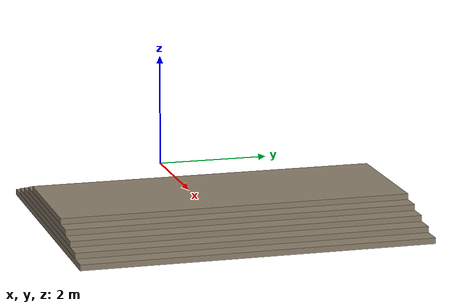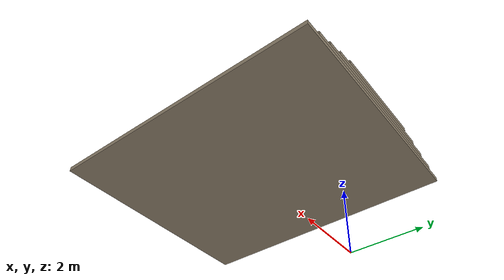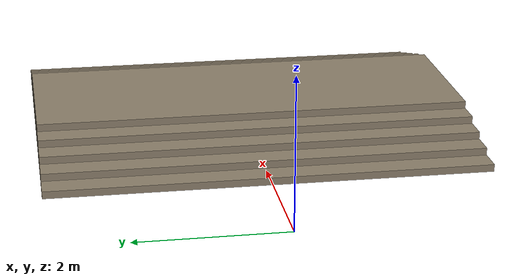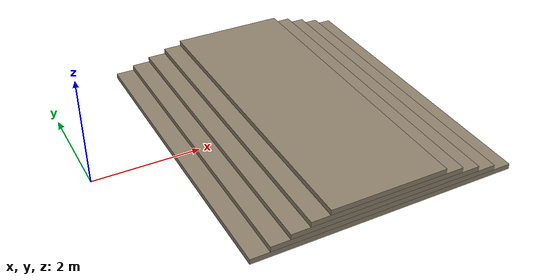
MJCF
<mujoco model="terrain stairs_10cm">
  <!-- 10 cm stairs up and down (5 steps each way, 35 cm treads) (scripts/make_terrain_benchmark.py) -->
  <asset>
    <material name="terrain" rgba="0.55 0.5 0.42 1"/>
  </asset>
  <worldbody>
    <geom name="stair1" type="box" pos="4.0000 0.0000 0.0500" size="2.5000 3.0000 0.0500" material="terrain" contype="1" conaffinity="1" condim="3" friction="1.0 0.5 0.1"/>
    <geom name="stair2" type="box" pos="4.0000 0.0000 0.1500" size="2.1500 3.0000 0.0500" material="terrain" contype="1" conaffinity="1" condim="3" friction="1.0 0.5 0.1"/>
    <geom name="stair3" type="box" pos="4.0000 0.0000 0.2500" size="1.8000 3.0000 0.0500" material="terrain" contype="1" conaffinity="1" condim="3" friction="1.0 0.5 0.1"/>
    <geom name="stair4" type="box" pos="4.0000 0.0000 0.3500" size="1.4500 3.0000 0.0500" material="terrain" contype="1" conaffinity="1" condim="3" friction="1.0 0.5 0.1"/>
    <geom name="stair5" type="box" pos="4.0000 0.0000 0.4500" size="1.1000 3.0000 0.0500" material="terrain" contype="1" conaffinity="1" condim="3" friction="1.0 0.5 0.1"/>
  </worldbody>
</mujoco>
